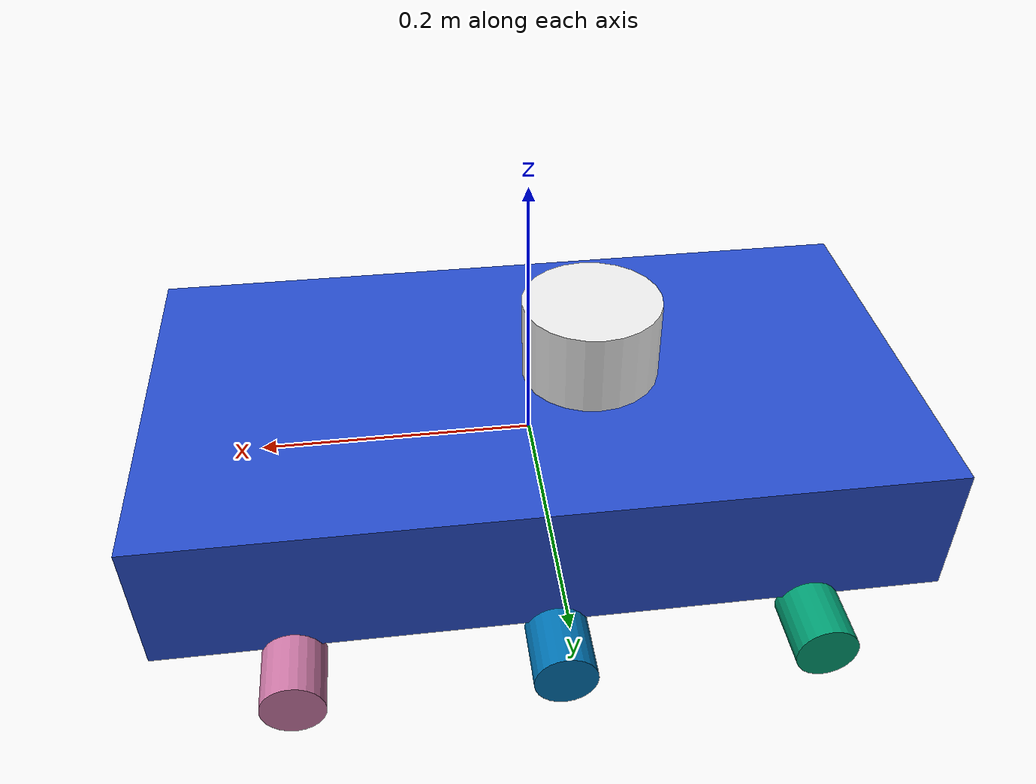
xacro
<?xml version="1.0" ?>
<robot name="myrobot" xmlns:xacro="http://www.ros.org/wiki/xacro">
    <xacro:include filename="$(find my_robot_description)/urdf/materials.xacro" />
    <xacro:include filename="$(find my_robot_description)/urdf/test.gazebo" />
    <xacro:include filename="$(find my_robot_description)/urdf/macros2.xacro" />

    <link name="base_link">
        <!-- pose and inertial -->
        <pose>0 0 0.1 0 0 0</pose>
        <inertial>
            <mass value="10"/>
            <origin rpy="0 0 0" xyz="0 0 0.1"/>
            <inertia ixx="0.0395416666667" ixy="0" ixz="0" iyy="0.106208333333" iyz="0" izz="0.106208333333"/>
        </inertial>
        <!-- body -->
        <collision name="collision_base_link">
            <geometry>
                <box size="0.55 0.3 0.15"/>
            </geometry>
        </collision>
        <visual>
            <origin rpy="0 0 0" xyz="0 0 0"/>
            <geometry>
                <box size="0.55 0.3 0.1"/>
            </geometry>
            <material name="blue"/>
        </visual>
    </link>

    <link name="sensor_laser">
        <inertial>
            <origin xyz="0 0 0" rpy="0 0 0" />
            <mass value="1" />
            <xacro:cylinder_inertia mass="1" r="0.05" l="0.1" />
        </inertial>

        <visual>
            <origin xyz="0 0 0" rpy="0 0 0" />
            <geometry>
                <cylinder radius="0.05" length="0.06"/>
            </geometry>
            <material name="white" />
        </visual>

        <collision>
            <origin xyz="0 0 0" rpy="0 0 0"/>
            <geometry>
                <cylinder radius="0.05" length="0.06"/>
            </geometry>
        </collision>
    </link>

    <joint name="joint_sensor_laser" type="fixed">
        <origin xyz="-0.045 0 0.08" rpy="0 0 0"/>
        <parent link="base_link"/>
        <child link="sensor_laser"/>
    </joint>

    <xacro:link_wheel name="blink_right_wheel" />
    <xacro:joint_wheel name="bjoint_right_wheel" child="blink_right_wheel" origin_xyz="-0.18 0.17 -0.06" />

    <xacro:link_wheel name="blink_left_wheel" />
    <xacro:joint_wheel name="bjoint_left_wheel" child="blink_left_wheel" origin_xyz="-0.18 -0.17 -0.06" />

    <xacro:link_wheel name="mlink_right_wheel" />
    <xacro:joint_wheel name="mjoint_right_wheel" child="mlink_right_wheel" origin_xyz="0.0 0.17 -0.06" />

    <xacro:link_wheel name="mlink_left_wheel" />
    <xacro:joint_wheel name="mjoint_left_wheel" child="mlink_left_wheel" origin_xyz="0.0 -0.17 -0.06" />

    <xacro:link_wheel name="flink_right_wheel" />
    <xacro:joint_wheel name="fjoint_right_wheel" child="flink_right_wheel" origin_xyz="0.18 0.17 -0.06" />

    <xacro:link_wheel name="flink_left_wheel" />
    <xacro:joint_wheel name="fjoint_left_wheel" child="flink_left_wheel" origin_xyz="0.18 -0.17 -0.06" />
</robot>

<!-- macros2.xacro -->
<robot xmlns:xacro="http://www.ros.org/wiki/xacro">
    <xacro:macro name="link_wheel" params="name">
        <link name="${name}">
            <inertial>
              <mass value="0.2"/>
              <origin rpy="0 1.5707 1.5707" xyz="0 0 0"/>
              <inertia ixx="0.000526666666667" ixy="0" ixz="0" iyy="0.000526666666667" iyz="0" izz="0.001"/>
            </inertial>
            <collision name="${name}_wheel_collision">
              <origin rpy="0 1.5707 1.5707" xyz="0 0 0"/>
              <geometry>
                <cylinder length="0.05" radius="0.022"/>
              </geometry>
            </collision>
            <visual name="${name}_visual">
              <origin rpy="0 1.5707 1.5707" xyz="0 0 0"/>
              <geometry>
                <cylinder length="0.05" radius="0.022"/>
              </geometry>
            </visual>
        </link>
    </xacro:macro>
    <xacro:macro name="joint_wheel" params="name child origin_xyz">
        <joint name="${name}" type="continuous">
            <origin rpy="0 0 0" xyz="${origin_xyz}"/>
            <child link="${child}"/>
            <parent link="base_link"/>
            <axis rpy="0 0 0" xyz="0 1 0"/>
            <limit effort="10000" velocity="1000"/>
            <joint_properties damping="1.0" friction="1.0"/>
        </joint>
    </xacro:macro>
    <xacro:macro name="cylinder_inertia" params="mass r l">
      <inertia  ixx="${mass*(3*r*r+l*l)/12}" ixy = "0" ixz = "0"
            iyy="${mass*(3*r*r+l*l)/12}" iyz = "0"
            izz="${mass*(r*r)/2}" />
    </xacro:macro>
</robot>
